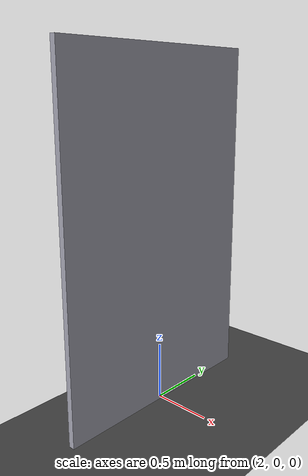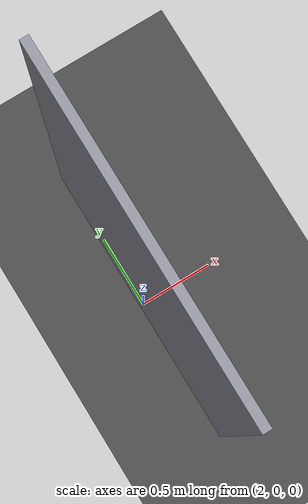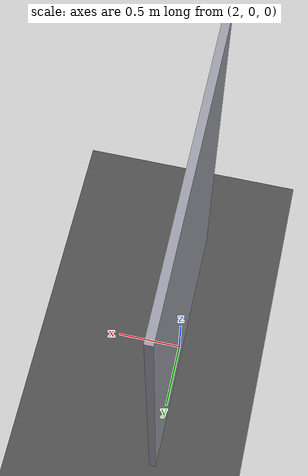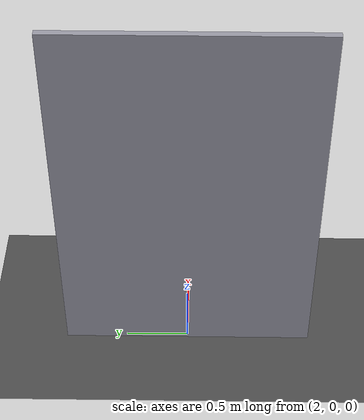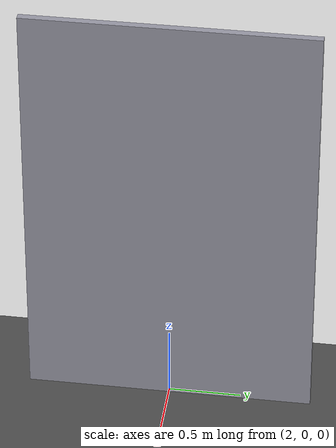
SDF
<?xml version="1.0"?>
<sdf version="1.10">
  <world name="wallbot_test_world">

    <physics name="1ms" type="ode">
      <max_step_size>0.001</max_step_size>
      <real_time_factor>1.0</real_time_factor>
    </physics>

    <plugin filename="gz-sim-physics-system" name="gz::sim::systems::Physics"></plugin>
    <plugin filename="gz-sim-user-commands-system" name="gz::sim::systems::UserCommands"></plugin>
    <plugin filename="gz-sim-scene-broadcaster-system" name="gz::sim::systems::SceneBroadcaster"></plugin>

    <light type="directional" name="sun">
      <cast_shadows>true</cast_shadows>
      <pose>0 0 10 0 0 0</pose>
      <diffuse>0.8 0.8 0.8 1</diffuse>
      <specular>0.2 0.2 0.2 1</specular>
      <direction>-0.5 0.1 -0.9</direction>
    </light>

    <!-- Flat ground for the Session-1 sanity check (no adhesion yet) -->
    <model name="ground_plane">
      <static>true</static>
      <link name="link">
        <collision name="collision">
          <geometry><plane><normal>0 0 1</normal><size>20 20</size></plane></geometry>
          <surface>
            <friction>
              <ode><mu>0.8</mu><mu2>0.8</mu2></ode>
            </friction>
          </surface>
        </collision>
        <visual name="visual">
          <geometry><plane><normal>0 0 1</normal><size>20 20</size></plane></geometry>
          <material>
            <ambient>0.3 0.3 0.3 1</ambient>
            <diffuse>0.3 0.3 0.3 1</diffuse>
          </material>
        </visual>
      </link>
    </model>

    <model name="metal_wall">
      <static>true</static>
      <pose>2.0 0 1.5 0 0 0</pose>
      <link name="wall_link">
        <collision name="collision">
          <geometry><box><size>0.05 2.0 3.0</size></box></geometry>
        </collision>
        <visual name="visual">
          <geometry><box><size>0.05 2.0 3.0</size></box></geometry>
          <material>
            <ambient>0.6 0.6 0.65 1</ambient>
            <diffuse>0.6 0.6 0.65 1</diffuse>
            <specular>0.8 0.8 0.9 1</specular>
          </material>
        </visual>
      </link>
    </model>

  </world>
</sdf>
